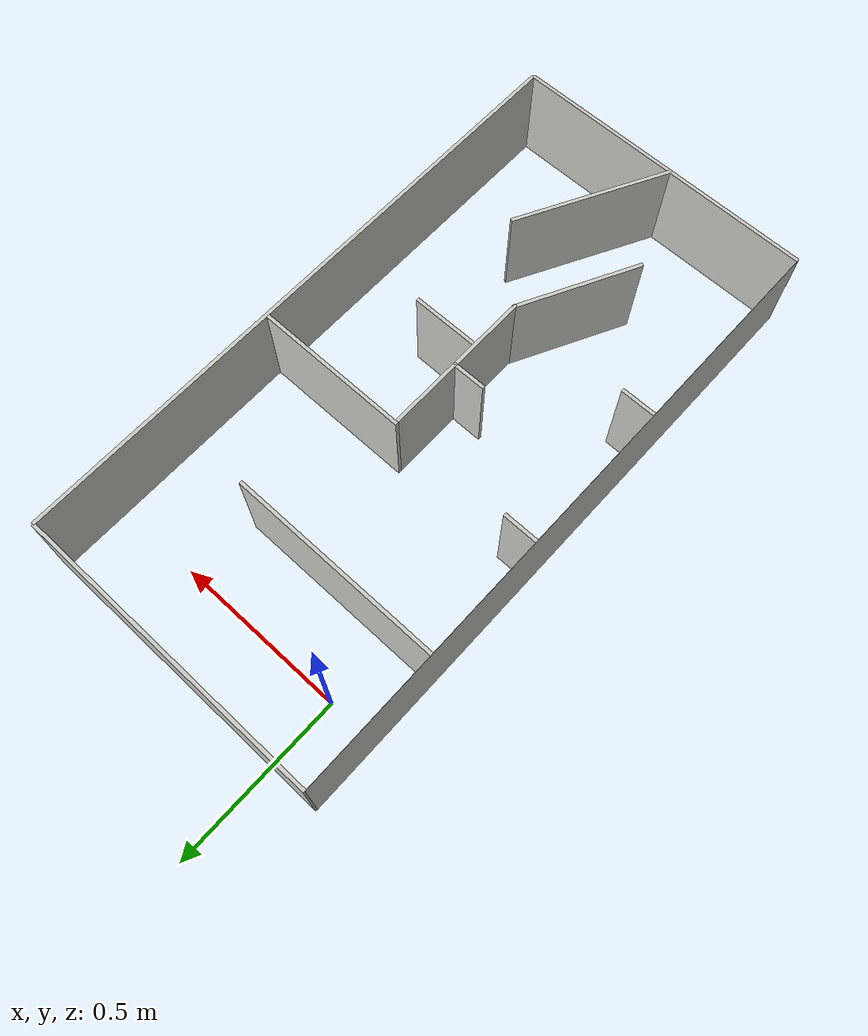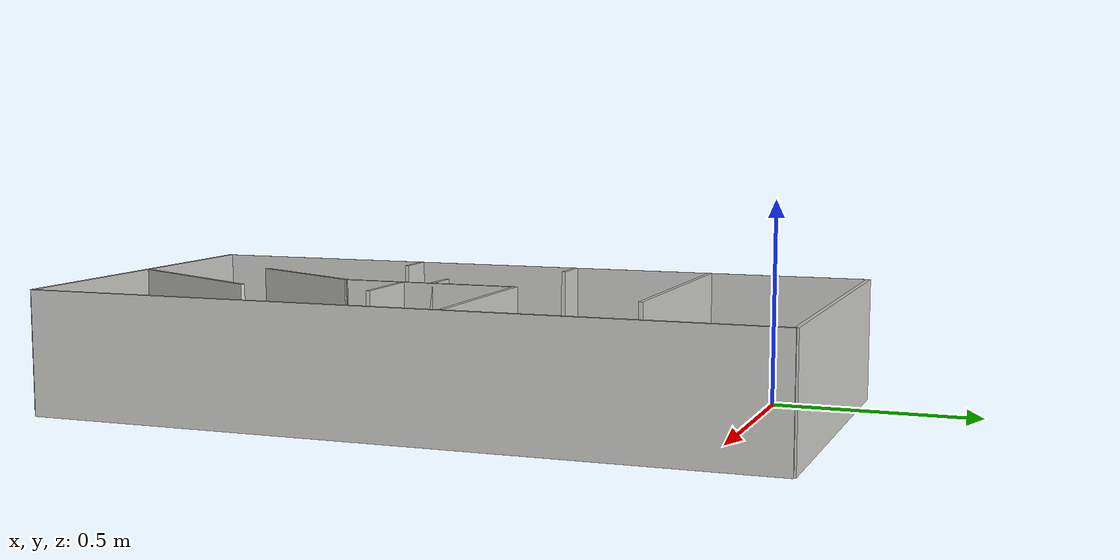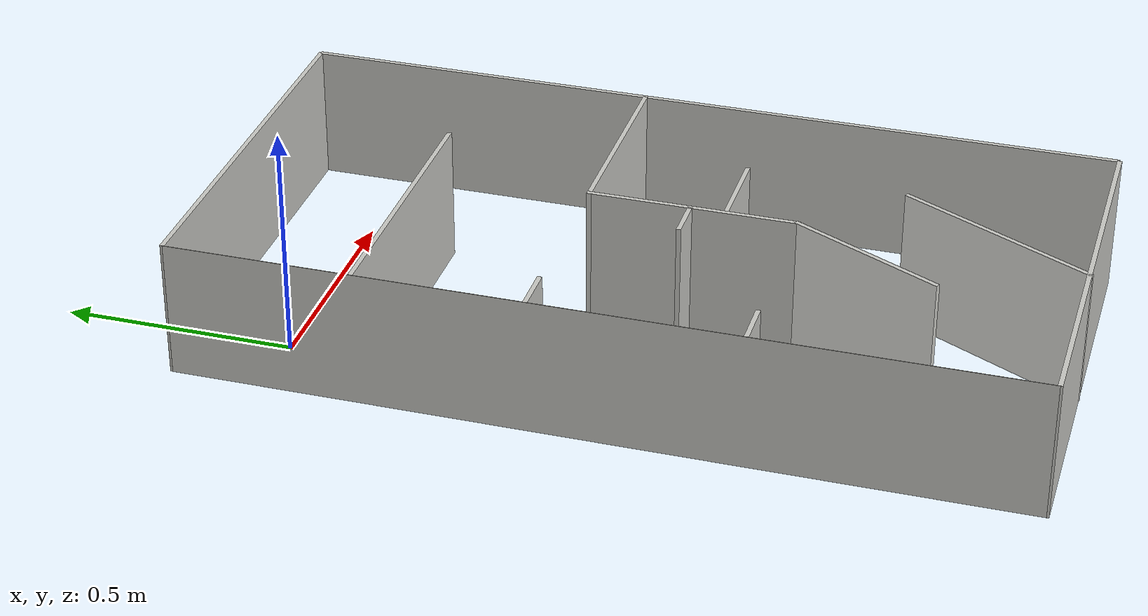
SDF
<?xml version='1.0'?>
<sdf version='1.6'>
  <model name='qmp_map_sim'>
    <pose frame=''>0.2975 -0.700876 0 0 -0 0</pose>
    <link name='Wall_0'>
      <collision name='Wall_0_Collision'>
        <geometry>
          <box>
            <size>1.795 0.001 0.3</size>
          </box>
        </geometry>
        <pose frame=''>0 0 0.15 0 -0 0</pose>
      </collision>
      <visual name='Wall_0_Visual'>
        <pose frame=''>0 0 0.15 0 -0 0</pose>
        <geometry>
          <box>
            <size>1.795 0.001 0.3</size>
          </box>
        </geometry>
        <material>
          <script>
            <uri>file://media/materials/scripts/gazebo.material</uri>
            <name>Gazebo/CeilingTiled</name>
          </script>
          <ambient>1 1 1 1</ambient>
        </material>
        <meta>
          <layer>0</layer>
        </meta>
      </visual>
      <pose frame=''>-0.4475 0.003376 0 0 -0 1.5708</pose>
    </link>
    <link name='Wall_10'>
      <collision name='Wall_10_Collision'>
        <geometry>
          <box>
            <size>0.45 0.01 0.3</size>
          </box>
        </geometry>
        <pose frame=''>0 0 0.15 0 -0 0</pose>
      </collision>
      <visual name='Wall_10_Visual'>
        <pose frame=''>0 0 0.15 0 -0 0</pose>
        <geometry>
          <box>
            <size>0.45 0.01 0.3</size>
          </box>
        </geometry>
        <material>
          <script>
            <uri>file://media/materials/scripts/gazebo.material</uri>
            <name>Gazebo/CeilingTiled</name>
          </script>
          <ambient>1 1 1 1</ambient>
        </material>
        <meta>
          <layer>0</layer>
        </meta>
      </visual>
      <pose frame=''>0.2225 0.140876 0 0 -0 3.14159</pose>
    </link>
    <link name='Wall_12'>
      <collision name='Wall_12_Collision'>
        <geometry>
          <box>
            <size>0.1 0.01 0.3</size>
          </box>
        </geometry>
        <pose frame=''>0 0 0.15 0 -0 0</pose>
      </collision>
      <visual name='Wall_12_Visual'>
        <pose frame=''>0 0 0.15 0 -0 0</pose>
        <geometry>
          <box>
            <size>0.1 0.01 0.3</size>
          </box>
        </geometry>
        <material>
          <script>
            <uri>file://media/materials/scripts/gazebo.material</uri>
            <name>Gazebo/CeilingTiled</name>
          </script>
          <ambient>1 1 1 1</ambient>
        </material>
        <meta>
          <layer>0</layer>
        </meta>
      </visual>
      <pose frame=''>-0.3975 0.140876 0 0 -0 0</pose>
    </link>
    <link name='Wall_14'>
      <collision name='Wall_14_Collision'>
        <geometry>
          <box>
            <size>0.45 0.01 0.3</size>
          </box>
        </geometry>
        <pose frame=''>0 0 0.15 0 -0 0</pose>
      </collision>
      <visual name='Wall_14_Visual'>
        <pose frame=''>0 0 0.15 0 -0 0</pose>
        <geometry>
          <box>
            <size>0.45 0.01 0.3</size>
          </box>
        </geometry>
        <material>
          <script>
            <uri>file://media/materials/scripts/gazebo.material</uri>
            <name>Gazebo/CeilingTiled</name>
          </script>
          <ambient>1 1 1 1</ambient>
        </material>
        <meta>
          <layer>0</layer>
        </meta>
      </visual>
      <pose frame=''>0.0025 -0.079124 0 0 -0 -1.5708</pose>
    </link>
    <link name='Wall_16'>
      <collision name='Wall_16_Collision'>
        <geometry>
          <box>
            <size>0.1 0.01 0.3</size>
          </box>
        </geometry>
        <pose frame=''>0 0 0.15 0 -0 0</pose>
      </collision>
      <visual name='Wall_16_Visual'>
        <pose frame=''>0 0 0.15 0 -0 0</pose>
        <geometry>
          <box>
            <size>0.1 0.01 0.3</size>
          </box>
        </geometry>
        <material>
          <script>
            <uri>file://media/materials/scripts/gazebo.material</uri>
            <name>Gazebo/CeilingTiled</name>
          </script>
          <ambient>1 1 1 1</ambient>
        </material>
        <meta>
          <layer>0</layer>
        </meta>
      </visual>
      <pose frame=''>-0.0425 -0.074124 0 0 -0 3.14159</pose>
    </link>
    <link name='Wall_18'>
      <collision name='Wall_18_Collision'>
        <geometry>
          <box>
            <size>0.1 0.01 0.3</size>
          </box>
        </geometry>
        <pose frame=''>0 0 0.15 0 -0 0</pose>
      </collision>
      <visual name='Wall_18_Visual'>
        <pose frame=''>0 0 0.15 0 -0 0</pose>
        <geometry>
          <box>
            <size>0.1 0.01 0.3</size>
          </box>
        </geometry>
        <material>
          <script>
            <uri>file://media/materials/scripts/gazebo.material</uri>
            <name>Gazebo/CeilingTiled</name>
          </script>
          <ambient>1 1 1 1</ambient>
        </material>
        <meta>
          <layer>0</layer>
        </meta>
      </visual>
      <pose frame=''>-0.3975 -0.299124 0 0 -0 0</pose>
    </link>
    <link name='Wall_2'>
      <collision name='Wall_2_Collision'>
        <geometry>
          <box>
            <size>0.895 0.01 0.3</size>
          </box>
        </geometry>
        <pose frame=''>0 0 0.15 0 -0 0</pose>
      </collision>
      <visual name='Wall_2_Visual'>
        <pose frame=''>0 0 0.15 0 -0 0</pose>
        <geometry>
          <box>
            <size>0.895 0.01 0.3</size>
          </box>
        </geometry>
        <material>
          <script>
            <uri>file://media/materials/scripts/gazebo.material</uri>
            <name>Gazebo/CeilingTiled</name>
          </script>
          <ambient>1 1 1 1</ambient>
        </material>
        <meta>
          <layer>0</layer>
        </meta>
      </visual>
      <pose frame=''>0 0.900876 0 0 -0 0</pose>
    </link>
    <link name='Wall_20'>
      <collision name='Wall_20_Collision'>
        <geometry>
          <box>
            <size>0.36 0.01 0.3</size>
          </box>
        </geometry>
        <pose frame=''>0 0 0.15 0 -0 0</pose>
      </collision>
      <visual name='Wall_20_Visual'>
        <pose frame=''>0 0 0.15 0 -0 0</pose>
        <geometry>
          <box>
            <size>0.36 0.01 0.3</size>
          </box>
        </geometry>
        <material>
          <script>
            <uri>file://media/materials/scripts/gazebo.material</uri>
            <name>Gazebo/CeilingTiled</name>
          </script>
          <ambient>1 1 1 1</ambient>
        </material>
        <meta>
          <layer>0</layer>
        </meta>
      </visual>
      <pose frame=''>-0.0775 -0.455124 0 0 -0 -2.04465</pose>
    </link>
    <link name='Wall_22'>
      <collision name='Wall_22_Collision'>
        <geometry>
          <box>
            <size>0.461774 0.01 0.3</size>
          </box>
        </geometry>
        <pose frame=''>0 0 0.15 0 -0 0</pose>
      </collision>
      <visual name='Wall_22_Visual'>
        <pose frame=''>0 0 0.15 0 -0 0</pose>
        <geometry>
          <box>
            <size>0.461774 0.01 0.3</size>
          </box>
        </geometry>
        <material>
          <script>
            <uri>file://media/materials/scripts/gazebo.material</uri>
            <name>Gazebo/CeilingTiled</name>
          </script>
          <ambient>1 1 1 1</ambient>
        </material>
        <meta>
          <layer>0</layer>
        </meta>
      </visual>
      <pose frame=''>0.0725 -0.694124 0 0 -0 1.08735</pose>
    </link>
    <link name='Wall_24'>
      <collision name='Wall_24_Collision'>
        <geometry>
          <box>
            <size>0.19 0.01 0.3</size>
          </box>
        </geometry>
        <pose frame=''>0 0 0.15 0 -0 0</pose>
      </collision>
      <visual name='Wall_24_Visual'>
        <pose frame=''>0 0 0.15 0 -0 0</pose>
        <geometry>
          <box>
            <size>0.19 0.01 0.3</size>
          </box>
        </geometry>
        <material>
          <script>
            <uri>file://media/materials/scripts/gazebo.material</uri>
            <name>Gazebo/CeilingTiled</name>
          </script>
          <ambient>1 1 1 1</ambient>
        </material>
        <meta>
          <layer>0</layer>
        </meta>
      </visual>
      <pose frame=''>0.1025 -0.149124 0 0 -0 0</pose>
    </link>
    <link name='Wall_4'>
      <collision name='Wall_4_Collision'>
        <geometry>
          <box>
            <size>1.795 0.01 0.3</size>
          </box>
        </geometry>
        <pose frame=''>0 0 0.15 0 -0 0</pose>
      </collision>
      <visual name='Wall_4_Visual'>
        <pose frame=''>0 0 0.15 0 -0 0</pose>
        <geometry>
          <box>
            <size>1.795 0.01 0.3</size>
          </box>
        </geometry>
        <material>
          <script>
            <uri>file://media/materials/scripts/gazebo.material</uri>
            <name>Gazebo/CeilingTiled</name>
          </script>
          <ambient>1 1 1 1</ambient>
        </material>
        <meta>
          <layer>0</layer>
        </meta>
      </visual>
      <pose frame=''>0.4475 0.003376 0 0 -0 -1.5708</pose>
    </link>
    <link name='Wall_6'>
      <collision name='Wall_6_Collision'>
        <geometry>
          <box>
            <size>0.895 0.01 0.3</size>
          </box>
        </geometry>
        <pose frame=''>0 0 0.15 0 -0 0</pose>
      </collision>
      <visual name='Wall_6_Visual'>
        <pose frame=''>0 0 0.15 0 -0 0</pose>
        <geometry>
          <box>
            <size>0.895 0.01 0.3</size>
          </box>
        </geometry>
        <material>
          <script>
            <uri>file://media/materials/scripts/gazebo.material</uri>
            <name>Gazebo/CeilingTiled</name>
          </script>
          <ambient>1 1 1 1</ambient>
        </material>
        <meta>
          <layer>0</layer>
        </meta>
      </visual>
      <pose frame=''>0 -0.894124 0 0 -0 3.14159</pose>
    </link>
    <link name='Wall_8'>
      <collision name='Wall_8_Collision'>
        <geometry>
          <box>
            <size>0.615 0.01 0.3</size>
          </box>
        </geometry>
        <pose frame=''>0 0 0.15 0 -0 0</pose>
      </collision>
      <visual name='Wall_8_Visual'>
        <pose frame=''>0 0 0.15 0 -0 0</pose>
        <geometry>
          <box>
            <size>0.615 0.01 0.3</size>
          </box>
        </geometry>
        <material>
          <script>
            <uri>file://media/materials/scripts/gazebo.material</uri>
            <name>Gazebo/CeilingTiled</name>
          </script>
          <ambient>1 1 1 1</ambient>
        </material>
        <meta>
          <layer>0</layer>
        </meta>
      </visual>
      <pose frame=''>-0.14 0.500876 0 0 -0 0</pose>
    </link>
    <static>1</static>
  </model>
</sdf>
